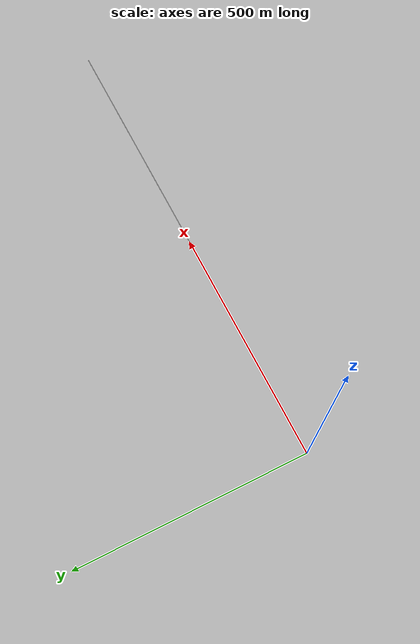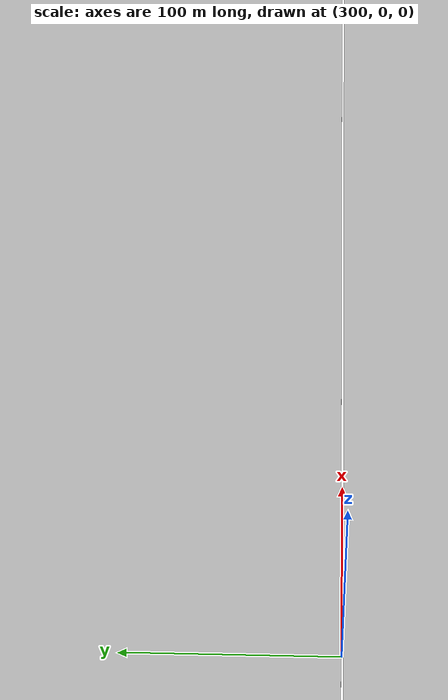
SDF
<?xml version="1.0" ?>
<sdf version="1.5">
  <world name="default">
    <scene>
      <ambient>1 1 1 1</ambient>
      <background>0 0 0 1</background>
      <grid>false</grid>
    </scene>

    <gui>
      <camera name="user">
        <pose>10 0 10 0 0.7 0</pose>
        <projection_type>orthographic</projection_type>
      </camera>
    </gui>

    <model name="wall1">
      <static>true</static>
      <pose>500 0 0 0 0 0</pose>
      <link name="link">
        <visual name="visual">
          <geometry>
            <box>
              <size>1000 1 .2</size>
            </box>
          </geometry>
          <material>
            <ambient>1 1 1 1</ambient>
            <diffuse>1 1 1 1</diffuse>
          </material>
        </visual>
      </link>
    </model>
 </world>
</sdf>
